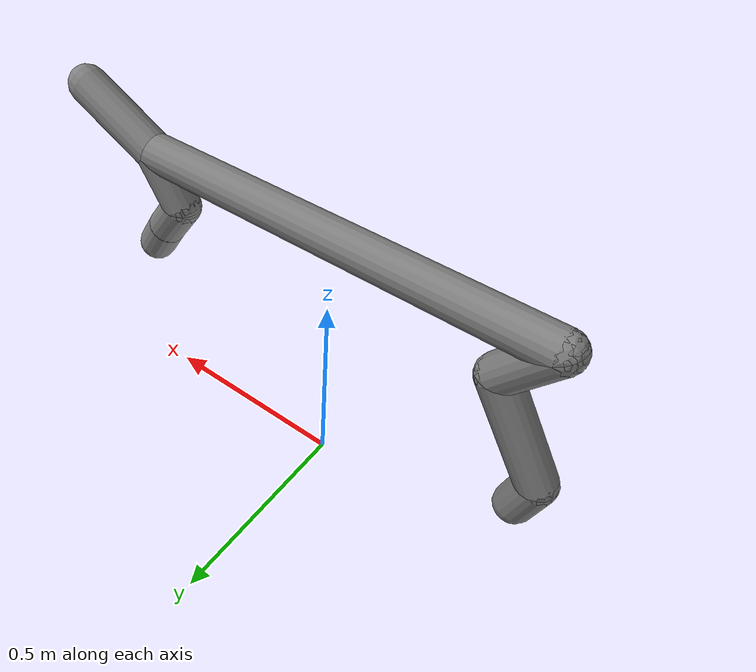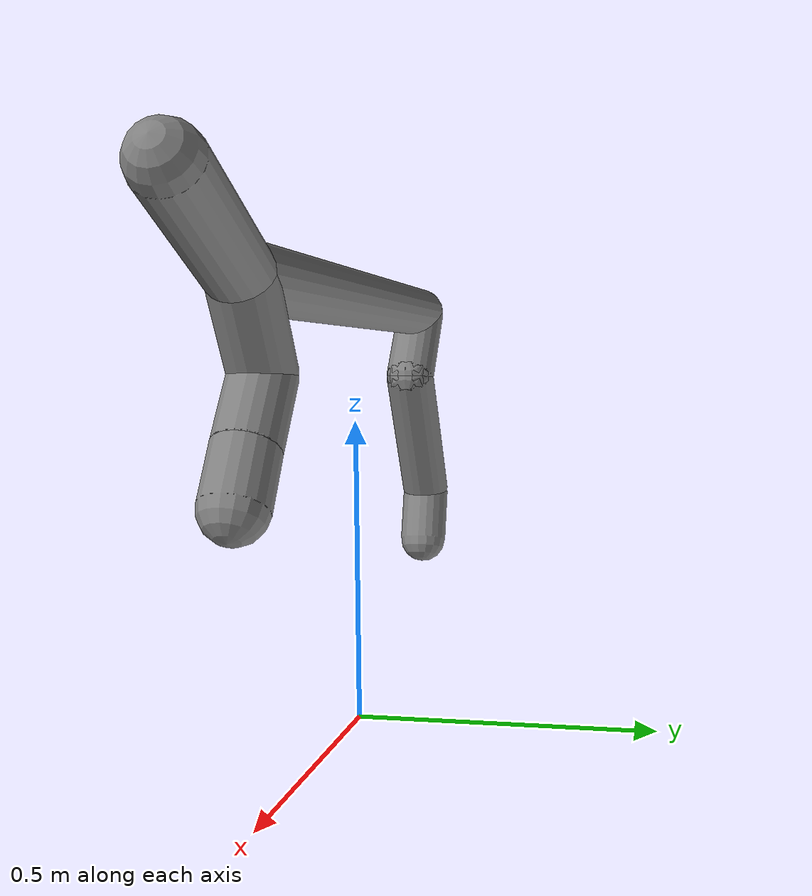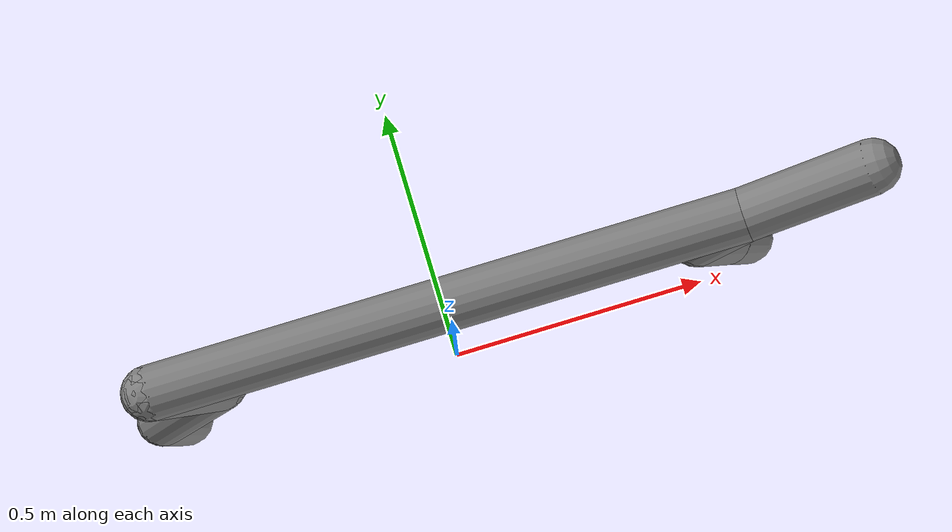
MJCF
<mujoco model="half_cheetah">
    <compiler angle="degree"/>
    <option gravity="0 0 -9.81" timestep="0.005"/>

    <default>
        <joint limited="true" damping="0.5" armature="0.1" axis="0 1 0"/>
        <geom type="capsule" density="1000" friction="0.4 0.1 0.1"/>
        <motor ctrlrange="-1 1" gear="120"/>
    </default>

    <worldbody>
        <body name="torso" pos="0 0 0.7">
            <freejoint name="root"/>
            <geom name="torso_geom" fromto="-0.5 0 0  0.5 0 0" size="0.046"/>
            <geom name="head_geom" fromto="0.5 0 0  0.7 0 0.1" size="0.046"/>

            <body name="bthigh" pos="-0.5 0 0">
                <joint name="bthigh" type="hinge" range="-30 60"/>
                <geom name="bthigh_geom" fromto="0 0 0  0.1 0 -0.13" size="0.046"/>
                <body name="bshin" pos="0.1 0 -0.13">
                    <joint name="bshin" type="hinge" range="-50 50"/>
                    <geom name="bshin_geom" fromto="0 0 0  -0.14 0 -0.24" size="0.046"/>
                    <body name="bfoot" pos="-0.14 0 -0.24">
                        <joint name="bfoot" type="hinge" range="-70 70"/>
                        <geom name="bfoot_geom" fromto="0 0 0  0.03 0 -0.10" size="0.046"/>
                    </body>
                </body>
            </body>

            <body name="fthigh" pos="0.5 0 0">
                <joint name="fthigh" type="hinge" range="-57 40"/>
                <geom name="fthigh_geom" fromto="0 0 0  -0.07 0 -0.12" size="0.046"/>
                <body name="fshin" pos="-0.07 0 -0.12">
                    <joint name="fshin" type="hinge" range="-70 50"/>
                    <geom name="fshin_geom" fromto="0 0 0  0.065 0 -0.09" size="0.046"/>
                    <body name="ffoot" pos="0.065 0 -0.09">
                        <joint name="ffoot" type="hinge" range="-30 30"/>
                        <geom name="ffoot_geom" fromto="0 0 0  0.045 0 -0.07" size="0.046"/>
                    </body>
                </body>
            </body>
        </body>
    </worldbody>

    <actuator>
        <motor name="bthigh_motor" joint="bthigh" gear="120"/>
        <motor name="bshin_motor"  joint="bshin"  gear="90"/>
        <motor name="bfoot_motor"  joint="bfoot"  gear="60"/>
        <motor name="fthigh_motor" joint="fthigh" gear="120"/>
        <motor name="fshin_motor"  joint="fshin"  gear="60"/>
        <motor name="ffoot_motor"  joint="ffoot"  gear="30"/>
    </actuator>
</mujoco>
